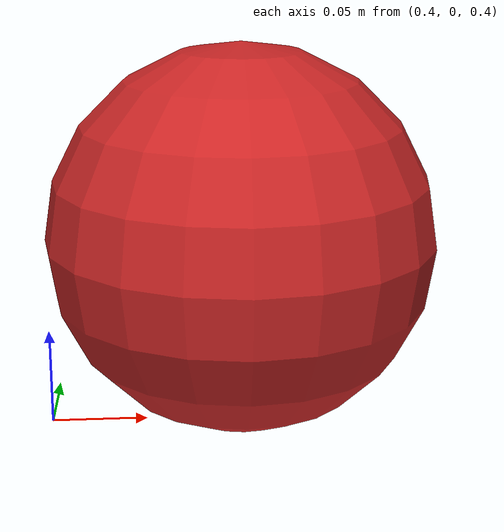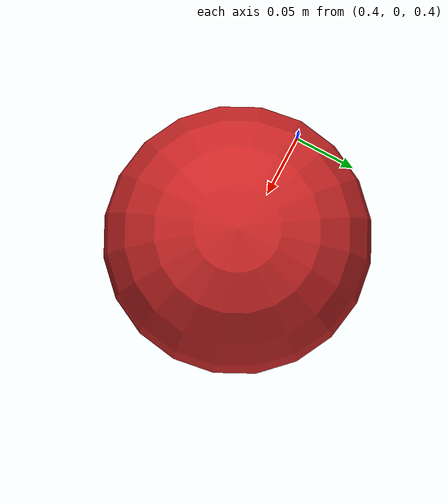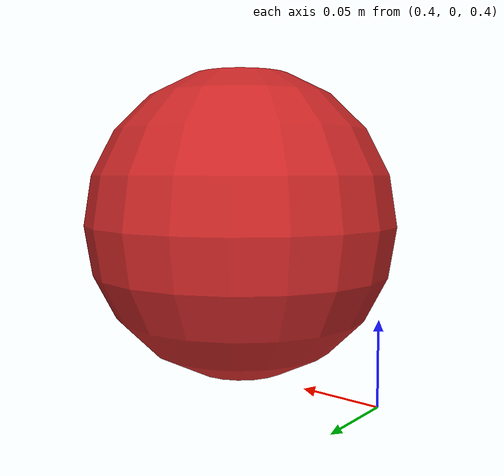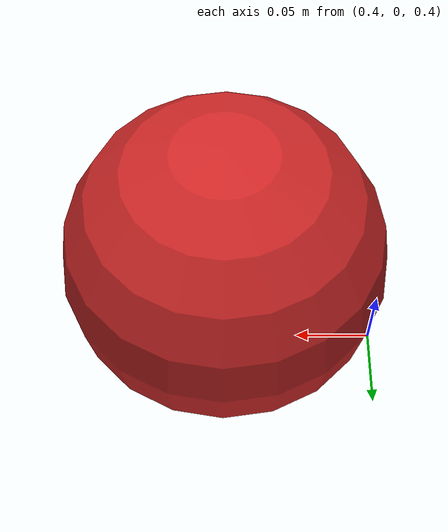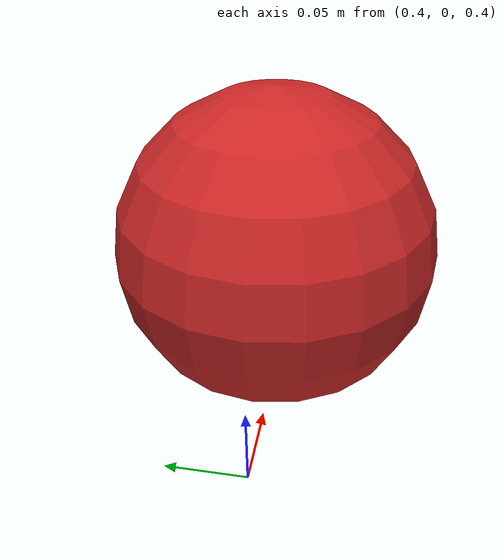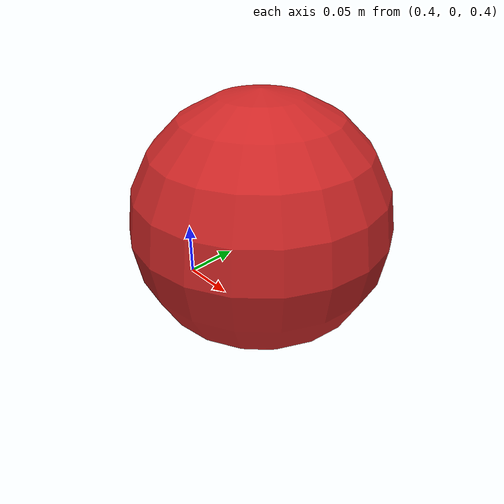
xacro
<?xml version="1.0" ?>
<robot name="spheres" xmlns:xacro="http://ros.org/wiki/xacro">
    <xacro:arg name="radius" default="0.1"/>
    <link name="sphere_1">
        <collision>
        <origin rpy="0 0 0" xyz="0.5 0 0.5"/>
        <geometry>
            <sphere radius="$(arg radius)"/>
        </geometry>
        </collision>
        <visual>
        <origin rpy="0 0 0" xyz="0.5 0 0.5"/>
        <geometry>
            <sphere radius="$(arg radius)"/>
        </geometry>
        <material name="red"/>
        </visual>
    </link>
    <link name="world"/>
    <joint name="fixed_joint_1" type="fixed">
        <parent link="world"/>
        <child link="sphere_1"/>
        <origin rpy="0 0 0" xyz="0 0 0"/>
    </joint>
</robot>
